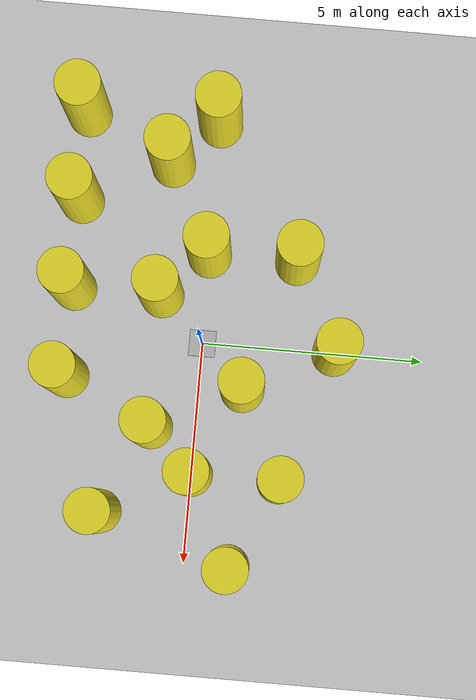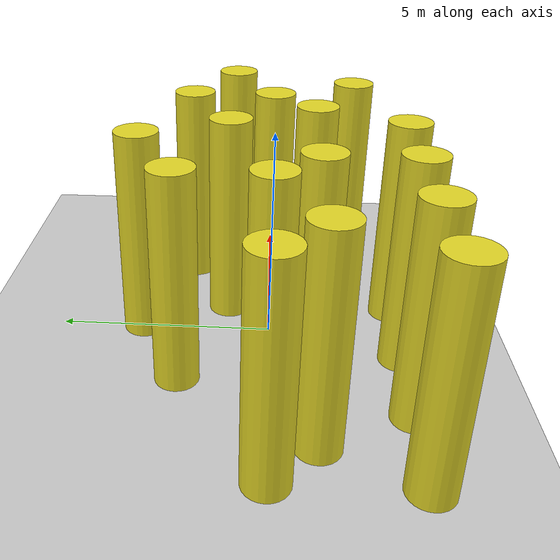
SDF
<sdf version='1.6'>
    <world name='default'>
        <light name='sun' type='directional'>
            <cast_shadows>1</cast_shadows>
            <pose frame=''>0 0 10 0 -0 0</pose>
            <diffuse>0.8 0.8 0.8 1</diffuse>
            <specular>0.2 0.2 0.2 1</specular>
            <attenuation>
                <range>1000</range>
                <constant>0.9</constant>
                <linear>0.01</linear>
                <quadratic>0.001</quadratic>
            </attenuation>
            <direction>-0.5 0.1 -0.9</direction>
        </light>

        <!-- A ground plane -->
        <include>
            <uri>model://asphalt_plane</uri>
        </include>

        <gravity>0 0 -9.7925</gravity>

        <magnetic_field>6e-06 2.3e-05 -4.2e-05</magnetic_field>

        <atmosphere type='adiabatic'/>

        <physics name='default_physics' default='0' type='ode'>
            <max_step_size>0.001</max_step_size>
            <real_time_factor>1</real_time_factor>
            <real_time_update_rate>1000</real_time_update_rate>
        </physics>

        <scene>
            <ambient>0.4 0.4 0.4 1</ambient>
            <background>0.6 0.6 0.9 1</background>
            <shadows>1</shadows>
        </scene>

        <audio>
            <device>default</device>
        </audio>

        <wind/>

        <spherical_coordinates>
            <surface_model>EARTH_WGS84</surface_model>
            <latitude_deg>0</latitude_deg>
            <longitude_deg>0</longitude_deg>
            <elevation>0</elevation>
            <heading_deg>0</heading_deg>
        </spherical_coordinates>

        <model name='landing_pad_H'>
            <include>
                <uri>model://landing_H</uri>
                <pose> 0 0 0.01 0 0 0 </pose>
            </include>
        </model>

        <model name='cylinder0'>
            <include>
                <uri>model://obs_cylinder_large</uri>
                <pose> -5 -3 0 0 0 0 </pose>
            </include>
        </model>

        <model name='cylinder1'>
            <include>
                <uri>model://obs_cylinder_large</uri>
                <pose> -5 0 0 0 0 0 </pose>
            </include>
        </model>

        <model name='cylinder2'>
            <include>
                <uri>model://obs_cylinder_large</uri>
                <pose> -4 -1 0 0 0 0 </pose>
            </include>
        </model>

        <model name='cylinder3'>
            <include>
                <uri>model://obs_cylinder_large</uri>
                <pose> 0 3 0 0 0 0 </pose>
            </include>
        </model>

        <model name='cylinder4'>
            <include>
                <uri>model://obs_cylinder_large</uri>
                <pose> -3 -3 0 0 0 0 </pose>
            </include>
        </model>

        <model name='cylinder5'>
            <include>
                <uri>model://obs_cylinder_large</uri>
                <pose> -2 0 0 0 0 0 </pose>
            </include>
        </model>

        <model name='cylinder6'>
            <include>
                <uri>model://obs_cylinder_large</uri>
                <pose> -2 2 0 0 0 0 </pose>
            </include>
        </model>

        <model name='cylinder7'>
            <include>
                <uri>model://obs_cylinder_large</uri>
                <pose> -1 -1 0 0 0 0 </pose>
            </include>
        </model>

        <model name='cylinder8'>
            <include>
                <uri>model://obs_cylinder_large</uri>
                <pose> 1 1 0 0 0 0 </pose>
            </include>
        </model>

        <model name='cylinder9'>
            <include>
                <uri>model://obs_cylinder_large</uri>
                <pose> -1 -3 0 0 0 0 </pose>
            </include>
        </model>

        <model name='cylinder10'>
            <include>
                <uri>model://obs_cylinder_large</uri>
                <pose> 1 -3 0 0 0 0 </pose>
            </include>
        </model>

        <model name='cylinder11'>
            <include>
                <uri>model://obs_cylinder_large</uri>
                <pose> 2 -1 0 0 0 0 </pose>
            </include>
        </model>

        <model name='cylinder12'>
            <include>
                <uri>model://obs_cylinder_large</uri>
                <pose> 3 0 0 0 0 0 </pose>
            </include>
        </model>

        <model name='cylinder13'>
            <include>
                <uri>model://obs_cylinder_large</uri>
                <pose> 3 2 0 0 0 0 </pose>
            </include>
        </model>

        <model name='cylinder14'>
            <include>
                <uri>model://obs_cylinder_large</uri>
                <pose> 4 -2 0 0 0 0 </pose>
            </include>
        </model>

        <model name='cylinder15'>
            <include>
                <uri>model://obs_cylinder_large</uri>
                <pose> 5 1 0 0 0 0 </pose>
            </include>
        </model>

        <gui fullscreen='0'>
            <camera name='user_camera'>
                <pose frame=''>0 4 20 0 1.37964 -1.575</pose>
                <view_controller>orbit</view_controller>
                <projection_type>perspective</projection_type>
            </camera>
        </gui>
    </world>
</sdf>

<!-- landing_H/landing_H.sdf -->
<sdf version="1.6">
  <model name="landing_H">
    <pose>0 0 0.01 0 0 0</pose>
    <static>true</static>
    <link name="link">
      <inertial>
        <mass>0.5</mass>
        <inertia>
          <ixx>0.001</ixx>
          <ixy>0</ixy>
          <ixz>0</ixz>
          <iyy>0.001</iyy>
          <iyz>0</iyz>
          <izz>0.001</izz>
        </inertia>
      </inertial>
      <collision name="collision">
        <geometry>
          <box>
            <size>0.8 0.8 0.01</size>
          </box>
        </geometry>
      </collision>
      <visual name="visual">
        <geometry>
          <box>
            <size>0.6 0.6 0.02</size>
          </box>
        </geometry>
        <material>
          <script>
            <uri>model://landing_H/materials/scripts</uri>
            <uri>model://landing_H/materials/textures</uri>
            <name>Cube/landing_H</name>
          </script>
        </material>
      </visual>
    </link>

  </model>
</sdf>

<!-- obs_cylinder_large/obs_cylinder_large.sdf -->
<sdf version='1.6'>
  <model name='obs_cylinder_large'>
    <link name='link'>
      <inertial>
        <mass>1</mass>
        <pose frame=''>0 0 0 0 -0 0</pose>
      </inertial>
      <self_collide>0</self_collide>
      <enable_wind>0</enable_wind>
      <kinematic>0</kinematic>
      <pose frame=''>0 0 0 0 -0 0</pose>
      <gravity>1</gravity>
      <visual name='visual'>
        <geometry>
          <cylinder>
            <radius>0.5</radius>
            <length>5.0</length>
          </cylinder>
        </geometry>
        <material>
          <script>
            <name>Gazebo/Yellow</name>
            <uri>file://media/materials/scripts/gazebo.material</uri>
          </script>
        </material>
        <pose frame=''>0 0 2.5 0 -0 0</pose>
        <transparency>0</transparency>
        <cast_shadows>1</cast_shadows>
      </visual>
      <collision name='collision'>
        <laser_retro>0</laser_retro>
        <max_contacts>10</max_contacts>
        <pose frame=''>0 0 2.5 0 -0 0</pose>
        <geometry>
          <cylinder>
            <radius>0.5</radius>
            <length>5.0</length>
          </cylinder>
        </geometry>
      </collision>
    </link>
    <static>1</static>
    <allow_auto_disable>1</allow_auto_disable>
  </model>
</sdf>
